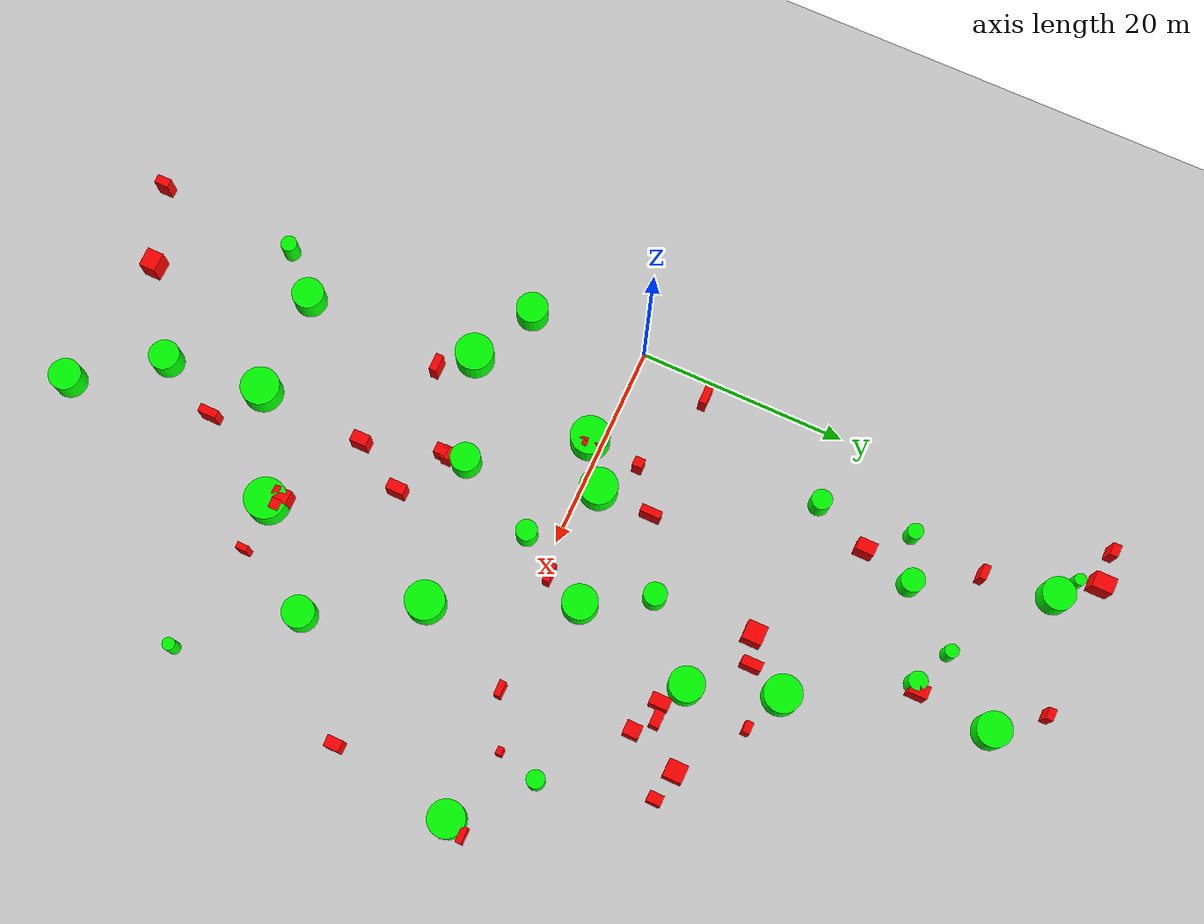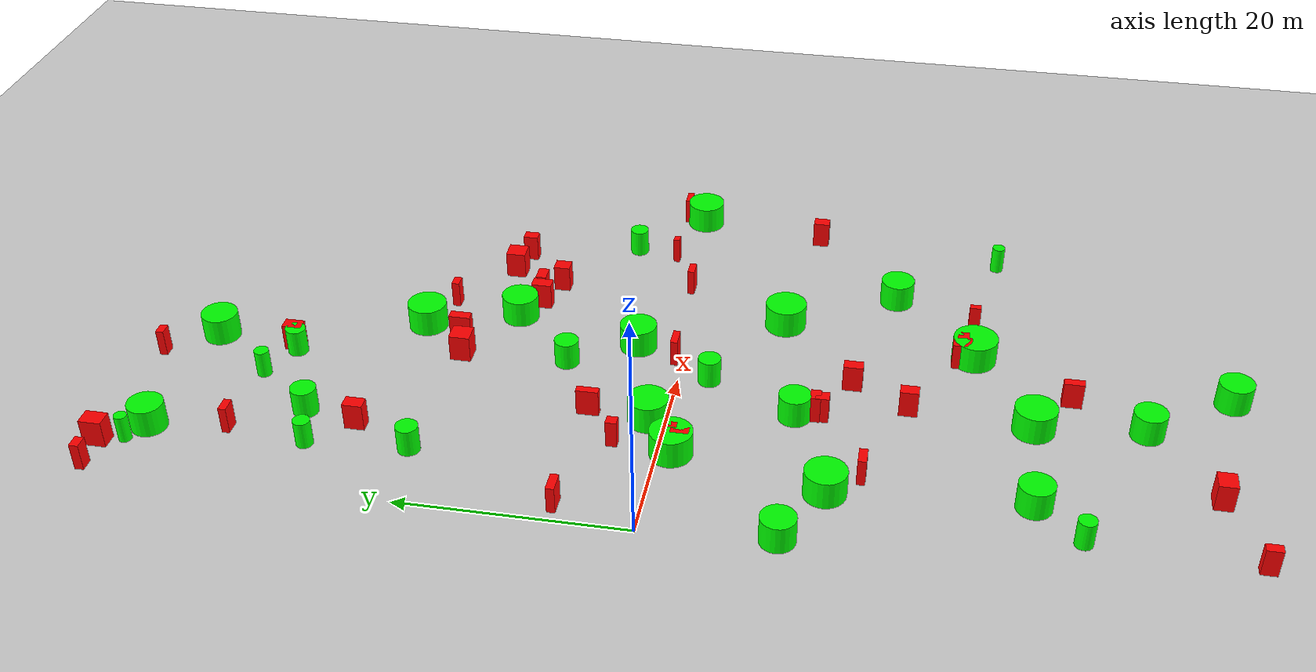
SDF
<sdf version="1.7">
 <world name="default">
  <model name="ground_plane">
   <static>1</static>
   <link name="link">
    <collision name="collision">
     <geometry><plane><normal>0 0 1</normal><size>100 100</size></plane></geometry>
     <surface>
      <contact><collide_bitmask>65535</collide_bitmask></contact>
      <friction><ode><mu>100</mu><mu2>50</mu2></ode></friction>
     </surface>
    </collision>
    <visual name="visual">
     <cast_shadows>0</cast_shadows>
     <geometry><plane><normal>0 0 1</normal><size>100 100</size></plane></geometry>
     <material>
      <script><uri>file://media/materials/scripts/gazebo.material</uri><name>Gazebo/Grey</name></script>
     </material>
    </visual>
   </link>
  </model>
  <model name="cylinder1">
   <static>1</static>
   <link name="link">
    <inertial>
     <mass>1</mass>
     <inertia><ixx>0.5</ixx><ixy>0</ixy><ixz>0</ixz><iyy>0.5</iyy><iyz>0</iyz><izz>1</izz></inertia>
    </inertial>
    <collision name="collision">
     <geometry><cylinder><radius>1.8651</radius><length>2.5</length></cylinder></geometry>
    </collision>
    <visual name="visual">
     <geometry><cylinder><radius>1.8651</radius><length>2.5</length></cylinder></geometry>
     <material>
      <ambient>0 1 0 1</ambient>
      <diffuse>0 1 0 1</diffuse>
      <specular>0.1 0.1 0.1 1</specular>
      <emissive>0 0 0 0</emissive>
     </material>
    </visual>
   </link>
   <pose>30.1802 -8.29921 1.25 0 -0 0</pose>
  </model>
  <model name="cylinder3">
   <static>1</static>
   <link name="link">
    <inertial>
     <mass>1</mass>
     <inertia><ixx>0.5</ixx><ixy>0</ixy><ixz>0</ixz><iyy>0.5</iyy><iyz>0</iyz><izz>1</izz></inertia>
    </inertial>
    <collision name="collision">
     <geometry><cylinder><radius>1.09951</radius><length>2.5</length></cylinder></geometry>
    </collision>
    <visual name="visual">
     <geometry><cylinder><radius>1.09951</radius><length>2.5</length></cylinder></geometry>
     <material>
      <ambient>0 1 0 1</ambient>
      <diffuse>0 1 0 1</diffuse>
      <specular>0.1 0.1 0.1 1</specular>
      <emissive>0 0 0 0</emissive>
     </material>
    </visual>
   </link>
   <pose>21.0441 10.3055 1.25 0 -0 0</pose>
  </model>
  <model name="cylinder6">
   <static>1</static>
   <link name="link">
    <inertial>
     <mass>1</mass>
     <inertia><ixx>0.5</ixx><ixy>0</ixy><ixz>0</ixz><iyy>0.5</iyy><iyz>0</iyz><izz>1</izz></inertia>
    </inertial>
    <collision name="collision">
     <geometry><cylinder><radius>1.86456</radius><length>2.5</length></cylinder></geometry>
    </collision>
    <visual name="visual">
     <geometry><cylinder><radius>1.86456</radius><length>2.5</length></cylinder></geometry>
     <material>
      <ambient>0 1 0 1</ambient>
      <diffuse>0 1 0 1</diffuse>
      <specular>0.1 0.1 0.1 1</specular>
      <emissive>0 0 0 0</emissive>
     </material>
    </visual>
   </link>
   <pose>9.96198 -1.16739 1.25 0 -0 0</pose>
  </model>
  <model name="cylinder7">
   <static>1</static>
   <link name="link">
    <inertial>
     <mass>1</mass>
     <inertia><ixx>0.5</ixx><ixy>0</ixy><ixz>0</ixz><iyy>0.5</iyy><iyz>0</iyz><izz>1</izz></inertia>
    </inertial>
    <collision name="collision">
     <geometry><cylinder><radius>1.57269</radius><length>2.5</length></cylinder></geometry>
    </collision>
    <visual name="visual">
     <geometry><cylinder><radius>1.57269</radius><length>2.5</length></cylinder></geometry>
     <material>
      <ambient>0 1 0 1</ambient>
      <diffuse>0 1 0 1</diffuse>
      <specular>0.1 0.1 0.1 1</specular>
      <emissive>0 0 0 0</emissive>
     </material>
    </visual>
   </link>
   <pose>5.89837 43.3155 1.25 0 -0 0</pose>
  </model>
  <model name="cylinder10">
   <static>1</static>
   <link name="link">
    <inertial>
     <mass>1</mass>
     <inertia><ixx>0.5</ixx><ixy>0</ixy><ixz>0</ixz><iyy>0.5</iyy><iyz>0</iyz><izz>1</izz></inertia>
    </inertial>
    <collision name="collision">
     <geometry><cylinder><radius>0.595167</radius><length>2.5</length></cylinder></geometry>
    </collision>
    <visual name="visual">
     <geometry><cylinder><radius>0.595167</radius><length>2.5</length></cylinder></geometry>
     <material>
      <ambient>0 1 0 1</ambient>
      <diffuse>0 1 0 1</diffuse>
      <specular>0.1 0.1 0.1 1</specular>
      <emissive>0 0 0 0</emissive>
     </material>
    </visual>
   </link>
   <pose>43.251 -27.3612 1.25 0 -0 0</pose>
  </model>
  <model name="cylinder12">
   <static>1</static>
   <link name="link">
    <inertial>
     <mass>1</mass>
     <inertia><ixx>0.5</ixx><ixy>0</ixy><ixz>0</ixz><iyy>0.5</iyy><iyz>0</iyz><izz>1</izz></inertia>
    </inertial>
    <collision name="collision">
     <geometry><cylinder><radius>0.905594</radius><length>2.5</length></cylinder></geometry>
    </collision>
    <visual name="visual">
     <geometry><cylinder><radius>0.905594</radius><length>2.5</length></cylinder></geometry>
     <material>
      <ambient>0 1 0 1</ambient>
      <diffuse>0 1 0 1</diffuse>
      <specular>0.1 0.1 0.1 1</specular>
      <emissive>0 0 0 0</emissive>
     </material>
    </visual>
   </link>
   <pose>18.5045 34.7129 1.25 0 -0 0</pose>
  </model>
  <model name="cylinder13">
   <static>1</static>
   <link name="link">
    <inertial>
     <mass>1</mass>
     <inertia><ixx>0.5</ixx><ixy>0</ixy><ixz>0</ixz><iyy>0.5</iyy><iyz>0</iyz><izz>1</izz></inertia>
    </inertial>
    <collision name="collision">
     <geometry><cylinder><radius>1.41726</radius><length>2.5</length></cylinder></geometry>
    </collision>
    <visual name="visual">
     <geometry><cylinder><radius>1.41726</radius><length>2.5</length></cylinder></geometry>
     <material>
      <ambient>0 1 0 1</ambient>
      <diffuse>0 1 0 1</diffuse>
      <specular>0.1 0.1 0.1 1</specular>
      <emissive>0 0 0 0</emissive>
     </material>
    </visual>
   </link>
   <pose>16.6447 -10.7088 1.25 0 -0 0</pose>
  </model>
  <model name="cylinder17">
   <static>1</static>
   <link name="link">
    <inertial>
     <mass>1</mass>
     <inertia><ixx>0.5</ixx><ixy>0</ixy><ixz>0</ixz><iyy>0.5</iyy><iyz>0</iyz><izz>1</izz></inertia>
    </inertial>
    <collision name="collision">
     <geometry><cylinder><radius>0.568678</radius><length>2.5</length></cylinder></geometry>
    </collision>
    <visual name="visual">
     <geometry><cylinder><radius>0.568678</radius><length>2.5</length></cylinder></geometry>
     <material>
      <ambient>0 1 0 1</ambient>
      <diffuse>0 1 0 1</diffuse>
      <specular>0.1 0.1 0.1 1</specular>
      <emissive>0 0 0 0</emissive>
     </material>
    </visual>
   </link>
   <pose>3.90818 44.5877 1.25 0 -0 0</pose>
  </model>
  <model name="cylinder21">
   <static>1</static>
   <link name="link">
    <inertial>
     <mass>1</mass>
     <inertia><ixx>0.5</ixx><ixy>0</ixy><ixz>0</ixz><iyy>0.5</iyy><iyz>0</iyz><izz>1</izz></inertia>
    </inertial>
    <collision name="collision">
     <geometry><cylinder><radius>1.8193</radius><length>2.5</length></cylinder></geometry>
    </collision>
    <visual name="visual">
     <geometry><cylinder><radius>1.8193</radius><length>2.5</length></cylinder></geometry>
     <material>
      <ambient>0 1 0 1</ambient>
      <diffuse>0 1 0 1</diffuse>
      <specular>0.1 0.1 0.1 1</specular>
      <emissive>0 0 0 0</emissive>
     </material>
    </visual>
   </link>
   <pose>7.11333 -14.3212 1.25 0 -0 0</pose>
  </model>
  <model name="cylinder22">
   <static>1</static>
   <link name="link">
    <inertial>
     <mass>1</mass>
     <inertia><ixx>0.5</ixx><ixy>0</ixy><ixz>0</ixz><iyy>0.5</iyy><iyz>0</iyz><izz>1</izz></inertia>
    </inertial>
    <collision name="collision">
     <geometry><cylinder><radius>1.74425</radius><length>2.5</length></cylinder></geometry>
    </collision>
    <visual name="visual">
     <geometry><cylinder><radius>1.74425</radius><length>2.5</length></cylinder></geometry>
     <material>
      <ambient>0 1 0 1</ambient>
      <diffuse>0 1 0 1</diffuse>
      <specular>0.1 0.1 0.1 1</specular>
      <emissive>0 0 0 0</emissive>
     </material>
    </visual>
   </link>
   <pose>46.8099 1.81907 1.25 0 -0 0</pose>
  </model>
  <model name="cylinder23">
   <static>1</static>
   <link name="link">
    <inertial>
     <mass>1</mass>
     <inertia><ixx>0.5</ixx><ixy>0</ixy><ixz>0</ixz><iyy>0.5</iyy><iyz>0</iyz><izz>1</izz></inertia>
    </inertial>
    <collision name="collision">
     <geometry><cylinder><radius>1.13008</radius><length>2.5</length></cylinder></geometry>
    </collision>
    <visual name="visual">
     <geometry><cylinder><radius>1.13008</radius><length>2.5</length></cylinder></geometry>
     <material>
      <ambient>0 1 0 1</ambient>
      <diffuse>0 1 0 1</diffuse>
      <specular>0.1 0.1 0.1 1</specular>
      <emissive>0 0 0 0</emissive>
     </material>
    </visual>
   </link>
   <pose>10.2275 30.9059 1.25 0 -0 0</pose>
  </model>
  <model name="cylinder25">
   <static>1</static>
   <link name="link">
    <inertial>
     <mass>1</mass>
     <inertia><ixx>0.5</ixx><ixy>0</ixy><ixz>0</ixz><iyy>0.5</iyy><iyz>0</iyz><izz>1</izz></inertia>
    </inertial>
    <collision name="collision">
     <geometry><cylinder><radius>1.50995</radius><length>2.5</length></cylinder></geometry>
    </collision>
    <visual name="visual">
     <geometry><cylinder><radius>1.50995</radius><length>2.5</length></cylinder></geometry>
     <material>
      <ambient>0 1 0 1</ambient>
      <diffuse>0 1 0 1</diffuse>
      <specular>0.1 0.1 0.1 1</specular>
      <emissive>0 0 0 0</emissive>
     </material>
    </visual>
   </link>
   <pose>0.928293 -11.251 1.25 0 -0 0</pose>
  </model>
  <model name="cylinder26">
   <static>1</static>
   <link name="link">
    <inertial>
     <mass>1</mass>
     <inertia><ixx>0.5</ixx><ixy>0</ixy><ixz>0</ixz><iyy>0.5</iyy><iyz>0</iyz><izz>1</izz></inertia>
    </inertial>
    <collision name="collision">
     <geometry><cylinder><radius>0.654385</radius><length>2.5</length></cylinder></geometry>
    </collision>
    <visual name="visual">
     <geometry><cylinder><radius>0.654385</radius><length>2.5</length></cylinder></geometry>
     <material>
      <ambient>0 1 0 1</ambient>
      <diffuse>0 1 0 1</diffuse>
      <specular>0.1 0.1 0.1 1</specular>
      <emissive>0 0 0 0</emissive>
     </material>
    </visual>
   </link>
   <pose>14.7564 36.4573 1.25 0 -0 0</pose>
  </model>
  <model name="cylinder27">
   <static>1</static>
   <link name="link">
    <inertial>
     <mass>1</mass>
     <inertia><ixx>0.5</ixx><ixy>0</ixy><ixz>0</ixz><iyy>0.5</iyy><iyz>0</iyz><izz>1</izz></inertia>
    </inertial>
    <collision name="collision">
     <geometry><cylinder><radius>1.01462</radius><length>2.5</length></cylinder></geometry>
    </collision>
    <visual name="visual">
     <geometry><cylinder><radius>1.01462</radius><length>2.5</length></cylinder></geometry>
     <material>
      <ambient>0 1 0 1</ambient>
      <diffuse>0 1 0 1</diffuse>
      <specular>0.1 0.1 0.1 1</specular>
      <emissive>0 0 0 0</emissive>
     </material>
    </visual>
   </link>
   <pose>20.5325 -2.70864 1.25 0 -0 0</pose>
  </model>
  <model name="cylinder29">
   <static>1</static>
   <link name="link">
    <inertial>
     <mass>1</mass>
     <inertia><ixx>0.5</ixx><ixy>0</ixy><ixz>0</ixz><iyy>0.5</iyy><iyz>0</iyz><izz>1</izz></inertia>
    </inertial>
    <collision name="collision">
     <geometry><cylinder><radius>0.983032</radius><length>2.5</length></cylinder></geometry>
    </collision>
    <visual name="visual">
     <geometry><cylinder><radius>0.983032</radius><length>2.5</length></cylinder></geometry>
     <material>
      <ambient>0 1 0 1</ambient>
      <diffuse>0 1 0 1</diffuse>
      <specular>0.1 0.1 0.1 1</specular>
      <emissive>0 0 0 0</emissive>
     </material>
    </visual>
   </link>
   <pose>6.74331 20.5658 1.25 0 -0 0</pose>
  </model>
  <model name="cylinder33">
   <static>1</static>
   <link name="link">
    <inertial>
     <mass>1</mass>
     <inertia><ixx>0.5</ixx><ixy>0</ixy><ixz>0</ixz><iyy>0.5</iyy><iyz>0</iyz><izz>1</izz></inertia>
    </inertial>
    <collision name="collision">
     <geometry><cylinder><radius>1.46466</radius><length>2.5</length></cylinder></geometry>
    </collision>
    <visual name="visual">
     <geometry><cylinder><radius>1.46466</radius><length>2.5</length></cylinder></geometry>
     <material>
      <ambient>0 1 0 1</ambient>
      <diffuse>0 1 0 1</diffuse>
      <specular>0.1 0.1 0.1 1</specular>
      <emissive>0 0 0 0</emissive>
     </material>
    </visual>
   </link>
   <pose>19.4033 -40.4297 1.25 0 -0 0</pose>
  </model>
  <model name="cylinder34">
   <static>1</static>
   <link name="link">
    <inertial>
     <mass>1</mass>
     <inertia><ixx>0.5</ixx><ixy>0</ixy><ixz>0</ixz><iyy>0.5</iyy><iyz>0</iyz><izz>1</izz></inertia>
    </inertial>
    <collision name="collision">
     <geometry><cylinder><radius>1.66903</radius><length>2.5</length></cylinder></geometry>
    </collision>
    <visual name="visual">
     <geometry><cylinder><radius>1.66903</radius><length>2.5</length></cylinder></geometry>
     <material>
      <ambient>0 1 0 1</ambient>
      <diffuse>0 1 0 1</diffuse>
      <specular>0.1 0.1 0.1 1</specular>
      <emissive>0 0 0 0</emissive>
     </material>
    </visual>
   </link>
   <pose>27.3196 16.1645 1.25 0 -0 0</pose>
  </model>
  <model name="cylinder35">
   <static>1</static>
   <link name="link">
    <inertial>
     <mass>1</mass>
     <inertia><ixx>0.5</ixx><ixy>0</ixy><ixz>0</ixz><iyy>0.5</iyy><iyz>0</iyz><izz>1</izz></inertia>
    </inertial>
    <collision name="collision">
     <geometry><cylinder><radius>1.99395</radius><length>2.5</length></cylinder></geometry>
    </collision>
    <visual name="visual">
     <geometry><cylinder><radius>1.99395</radius><length>2.5</length></cylinder></geometry>
     <material>
      <ambient>0 1 0 1</ambient>
      <diffuse>0 1 0 1</diffuse>
      <specular>0.1 0.1 0.1 1</specular>
      <emissive>0 0 0 0</emissive>
     </material>
    </visual>
   </link>
   <pose>27.7227 -25.6341 1.25 0 -0 0</pose>
  </model>
  <model name="cylinder38">
   <static>1</static>
   <link name="link">
    <inertial>
     <mass>1</mass>
     <inertia><ixx>0.5</ixx><ixy>0</ixy><ixz>0</ixz><iyy>0.5</iyy><iyz>0</iyz><izz>1</izz></inertia>
    </inertial>
    <collision name="collision">
     <geometry><cylinder><radius>0.747737</radius><length>2.5</length></cylinder></geometry>
    </collision>
    <visual name="visual">
     <geometry><cylinder><radius>0.747737</radius><length>2.5</length></cylinder></geometry>
     <material>
      <ambient>0 1 0 1</ambient>
      <diffuse>0 1 0 1</diffuse>
      <specular>0.1 0.1 0.1 1</specular>
      <emissive>0 0 0 0</emissive>
     </material>
    </visual>
   </link>
   <pose>5.94157 29.4359 1.25 0 -0 0</pose>
  </model>
  <model name="cylinder39">
   <static>1</static>
   <link name="link">
    <inertial>
     <mass>1</mass>
     <inertia><ixx>0.5</ixx><ixy>0</ixy><ixz>0</ixz><iyy>0.5</iyy><iyz>0</iyz><izz>1</izz></inertia>
    </inertial>
    <collision name="collision">
     <geometry><cylinder><radius>1.78702</radius><length>2.5</length></cylinder></geometry>
    </collision>
    <visual name="visual">
     <geometry><cylinder><radius>1.78702</radius><length>2.5</length></cylinder></geometry>
     <material>
      <ambient>0 1 0 1</ambient>
      <diffuse>0 1 0 1</diffuse>
      <specular>0.1 0.1 0.1 1</specular>
      <emissive>0 0 0 0</emissive>
     </material>
    </visual>
   </link>
   <pose>24.5307 24.2606 1.25 0 -0 0</pose>
  </model>
  <model name="cylinder41">
   <static>1</static>
   <link name="link">
    <inertial>
     <mass>1</mass>
     <inertia><ixx>0.5</ixx><ixy>0</ixy><ixz>0</ixz><iyy>0.5</iyy><iyz>0</iyz><izz>1</izz></inertia>
    </inertial>
    <collision name="collision">
     <geometry><cylinder><radius>1.65017</radius><length>2.5</length></cylinder></geometry>
    </collision>
    <visual name="visual">
     <geometry><cylinder><radius>1.65017</radius><length>2.5</length></cylinder></geometry>
     <material>
      <ambient>0 1 0 1</ambient>
      <diffuse>0 1 0 1</diffuse>
      <specular>0.1 0.1 0.1 1</specular>
      <emissive>0 0 0 0</emissive>
     </material>
    </visual>
   </link>
   <pose>19.6859 42.4461 1.25 0 -0 0</pose>
  </model>
  <model name="cylinder44">
   <static>1</static>
   <link name="link">
    <inertial>
     <mass>1</mass>
     <inertia><ixx>0.5</ixx><ixy>0</ixy><ixz>0</ixz><iyy>0.5</iyy><iyz>0</iyz><izz>1</izz></inertia>
    </inertial>
    <collision name="collision">
     <geometry><cylinder><radius>1.53328</radius><length>2.5</length></cylinder></geometry>
    </collision>
    <visual name="visual">
     <geometry><cylinder><radius>1.53328</radius><length>2.5</length></cylinder></geometry>
     <material>
      <ambient>0 1 0 1</ambient>
      <diffuse>0 1 0 1</diffuse>
      <specular>0.1 0.1 0.1 1</specular>
      <emissive>0 0 0 0</emissive>
     </material>
    </visual>
   </link>
   <pose>35.838 -18.1699 1.25 0 -0 0</pose>
  </model>
  <model name="cylinder45">
   <static>1</static>
   <link name="link">
    <inertial>
     <mass>1</mass>
     <inertia><ixx>0.5</ixx><ixy>0</ixy><ixz>0</ixz><iyy>0.5</iyy><iyz>0</iyz><izz>1</izz></inertia>
    </inertial>
    <collision name="collision">
     <geometry><cylinder><radius>0.860562</radius><length>2.5</length></cylinder></geometry>
    </collision>
    <visual name="visual">
     <geometry><cylinder><radius>0.860562</radius><length>2.5</length></cylinder></geometry>
     <material>
      <ambient>0 1 0 1</ambient>
      <diffuse>0 1 0 1</diffuse>
      <specular>0.1 0.1 0.1 1</specular>
      <emissive>0 0 0 0</emissive>
     </material>
    </visual>
   </link>
   <pose>40.4796 7.45677 1.25 0 -0 0</pose>
  </model>
  <model name="cylinder51">
   <static>1</static>
   <link name="link">
    <inertial>
     <mass>1</mass>
     <inertia><ixx>0.5</ixx><ixy>0</ixy><ixz>0</ixz><iyy>0.5</iyy><iyz>0</iyz><izz>1</izz></inertia>
    </inertial>
    <collision name="collision">
     <geometry><cylinder><radius>1.79431</radius><length>2.5</length></cylinder></geometry>
    </collision>
    <visual name="visual">
     <geometry><cylinder><radius>1.79431</radius><length>2.5</length></cylinder></geometry>
     <material>
      <ambient>0 1 0 1</ambient>
      <diffuse>0 1 0 1</diffuse>
      <specular>0.1 0.1 0.1 1</specular>
      <emissive>0 0 0 0</emissive>
     </material>
    </visual>
   </link>
   <pose>14.031 1.5401 1.25 0 -0 0</pose>
  </model>
  <model name="cylinder52">
   <static>1</static>
   <link name="link">
    <inertial>
     <mass>1</mass>
     <inertia><ixx>0.5</ixx><ixy>0</ixy><ixz>0</ixz><iyy>0.5</iyy><iyz>0</iyz><izz>1</izz></inertia>
    </inertial>
    <collision name="collision">
     <geometry><cylinder><radius>1.85071</radius><length>2.5</length></cylinder></geometry>
    </collision>
    <visual name="visual">
     <geometry><cylinder><radius>1.85071</radius><length>2.5</length></cylinder></geometry>
     <material>
      <ambient>0 1 0 1</ambient>
      <diffuse>0 1 0 1</diffuse>
      <specular>0.1 0.1 0.1 1</specular>
      <emissive>0 0 0 0</emissive>
     </material>
    </visual>
   </link>
   <pose>18.378 -30.9505 1.25 0 -0 0</pose>
  </model>
  <model name="cylinder53">
   <static>1</static>
   <link name="link">
    <inertial>
     <mass>1</mass>
     <inertia><ixx>0.5</ixx><ixy>0</ixy><ixz>0</ixz><iyy>0.5</iyy><iyz>0</iyz><izz>1</izz></inertia>
    </inertial>
    <collision name="collision">
     <geometry><cylinder><radius>1.54016</radius><length>2.5</length></cylinder></geometry>
    </collision>
    <visual name="visual">
     <geometry><cylinder><radius>1.54016</radius><length>2.5</length></cylinder></geometry>
     <material>
      <ambient>0 1 0 1</ambient>
      <diffuse>0 1 0 1</diffuse>
      <specular>0.1 0.1 0.1 1</specular>
      <emissive>0 0 0 0</emissive>
     </material>
    </visual>
   </link>
   <pose>24.9018 -47.9278 1.25 0 -0 0</pose>
  </model>
  <model name="cylinder55">
   <static>1</static>
   <link name="link">
    <inertial>
     <mass>1</mass>
     <inertia><ixx>0.5</ixx><ixy>0</ixy><ixz>0</ixz><iyy>0.5</iyy><iyz>0</iyz><izz>1</izz></inertia>
    </inertial>
    <collision name="collision">
     <geometry><cylinder><radius>0.782471</radius><length>2.5</length></cylinder></geometry>
    </collision>
    <visual name="visual">
     <geometry><cylinder><radius>0.782471</radius><length>2.5</length></cylinder></geometry>
     <material>
      <ambient>0 1 0 1</ambient>
      <diffuse>0 1 0 1</diffuse>
      <specular>0.1 0.1 0.1 1</specular>
      <emissive>0 0 0 0</emissive>
     </material>
    </visual>
   </link>
   <pose>4.72557 -34.8483 1.25 0 -0 0</pose>
  </model>
  <model name="cylinder56">
   <static>1</static>
   <link name="link">
    <inertial>
     <mass>1</mass>
     <inertia><ixx>0.5</ixx><ixy>0</ixy><ixz>0</ixz><iyy>0.5</iyy><iyz>0</iyz><izz>1</izz></inertia>
    </inertial>
    <collision name="collision">
     <geometry><cylinder><radius>1.53311</radius><length>2.5</length></cylinder></geometry>
    </collision>
    <visual name="visual">
     <geometry><cylinder><radius>1.53311</radius><length>2.5</length></cylinder></geometry>
     <material>
      <ambient>0 1 0 1</ambient>
      <diffuse>0 1 0 1</diffuse>
      <specular>0.1 0.1 0.1 1</specular>
      <emissive>0 0 0 0</emissive>
     </material>
    </visual>
   </link>
   <pose>8.37751 -31.0098 1.25 0 -0 0</pose>
  </model>
  <model name="cylinder57">
   <static>1</static>
   <link name="link">
    <inertial>
     <mass>1</mass>
     <inertia><ixx>0.5</ixx><ixy>0</ixy><ixz>0</ixz><iyy>0.5</iyy><iyz>0</iyz><izz>1</izz></inertia>
    </inertial>
    <collision name="collision">
     <geometry><cylinder><radius>1.67014</radius><length>2.5</length></cylinder></geometry>
    </collision>
    <visual name="visual">
     <geometry><cylinder><radius>1.67014</radius><length>2.5</length></cylinder></geometry>
     <material>
      <ambient>0 1 0 1</ambient>
      <diffuse>0 1 0 1</diffuse>
      <specular>0.1 0.1 0.1 1</specular>
      <emissive>0 0 0 0</emissive>
     </material>
    </visual>
   </link>
   <pose>24.5219 4.44485 1.25 0 -0 0</pose>
  </model>
  <model name="box4">
   <static>1</static>
   <link name="link">
    <inertial>
     <mass>1</mass>
     <inertia><ixx>0.083</ixx><ixy>0</ixy><ixz>0</ixz><iyy>0.083</iyy><iyz>0</iyz><izz>0.083</izz></inertia>
    </inertial>
    <collision name="collision"><geometry><box><size>1.21628 1.75215 2.5</size></box></geometry></collision>
    <visual name="visual">
     <geometry><box><size>1.21628 1.75215 2.5</size></box></geometry>
     <material>
      <ambient>1 0 0 1</ambient>
      <diffuse>1 0 0 1</diffuse>
      <specular>0.1 0.1 0.1 1</specular>
      <emissive>0 0 0 0</emissive>
     </material>
    </visual>
   </link>
   <pose>9.08167 25.9531 1.25 0 -0 0</pose>
  </model>
  <model name="box5">
   <static>1</static>
   <link name="link">
    <inertial>
     <mass>1</mass>
     <inertia><ixx>0.083</ixx><ixy>0</ixy><ixz>0</ixz><iyy>0.083</iyy><iyz>0</iyz><izz>0.083</izz></inertia>
    </inertial>
    <collision name="collision"><geometry><box><size>0.705458 1.97642 2.5</size></box></geometry></collision>
    <visual name="visual">
     <geometry><box><size>0.705458 1.97642 2.5</size></box></geometry>
     <material>
      <ambient>1 0 0 1</ambient>
      <diffuse>1 0 0 1</diffuse>
      <specular>0.1 0.1 0.1 1</specular>
      <emissive>0 0 0 0</emissive>
     </material>
    </visual>
   </link>
   <pose>14.2268 6.85979 1.25 0 -0 0</pose>
  </model>
  <model name="box6">
   <static>1</static>
   <link name="link">
    <inertial>
     <mass>1</mass>
     <inertia><ixx>0.083</ixx><ixy>0</ixy><ixz>0</ixz><iyy>0.083</iyy><iyz>0</iyz><izz>0.083</izz></inertia>
    </inertial>
    <collision name="collision"><geometry><box><size>1.8271 1.87434 2.5</size></box></geometry></collision>
    <visual name="visual">
     <geometry><box><size>1.8271 1.87434 2.5</size></box></geometry>
     <material>
      <ambient>1 0 0 1</ambient>
      <diffuse>1 0 0 1</diffuse>
      <specular>0.1 0.1 0.1 1</specular>
      <emissive>0 0 0 0</emissive>
     </material>
    </visual>
   </link>
   <pose>20.5312 19.8476 1.25 0 -0 0</pose>
  </model>
  <model name="box7">
   <static>1</static>
   <link name="link">
    <inertial>
     <mass>1</mass>
     <inertia><ixx>0.083</ixx><ixy>0</ixy><ixz>0</ixz><iyy>0.083</iyy><iyz>0</iyz><izz>0.083</izz></inertia>
    </inertial>
    <collision name="collision"><geometry><box><size>0.868373 1.57804 2.5</size></box></geometry></collision>
    <visual name="visual">
     <geometry><box><size>0.868373 1.57804 2.5</size></box></geometry>
     <material>
      <ambient>1 0 0 1</ambient>
      <diffuse>1 0 0 1</diffuse>
      <specular>0.1 0.1 0.1 1</specular>
      <emissive>0 0 0 0</emissive>
     </material>
    </visual>
   </link>
   <pose>10.1794 -1.87549 1.25 0 -0 0</pose>
  </model>
  <model name="box8">
   <static>1</static>
   <link name="link">
    <inertial>
     <mass>1</mass>
     <inertia><ixx>0.083</ixx><ixy>0</ixy><ixz>0</ixz><iyy>0.083</iyy><iyz>0</iyz><izz>0.083</izz></inertia>
    </inertial>
    <collision name="collision"><geometry><box><size>0.788576 1.78571 2.5</size></box></geometry></collision>
    <visual name="visual">
     <geometry><box><size>0.788576 1.78571 2.5</size></box></geometry>
     <material>
      <ambient>1 0 0 1</ambient>
      <diffuse>1 0 0 1</diffuse>
      <specular>0.1 0.1 0.1 1</specular>
      <emissive>0 0 0 0</emissive>
     </material>
    </visual>
   </link>
   <pose>22.5336 -34.1751 1.25 0 -0 0</pose>
  </model>
  <model name="box9">
   <static>1</static>
   <link name="link">
    <inertial>
     <mass>1</mass>
     <inertia><ixx>0.083</ixx><ixy>0</ixy><ixz>0</ixz><iyy>0.083</iyy><iyz>0</iyz><izz>0.083</izz></inertia>
    </inertial>
    <collision name="collision"><geometry><box><size>0.743672 0.572607 2.5</size></box></geometry></collision>
    <visual name="visual">
     <geometry><box><size>0.743672 0.572607 2.5</size></box></geometry>
     <material>
      <ambient>1 0 0 1</ambient>
      <diffuse>1 0 0 1</diffuse>
      <specular>0.1 0.1 0.1 1</specular>
      <emissive>0 0 0 0</emissive>
     </material>
    </visual>
   </link>
   <pose>39.5402 3.54251 1.25 0 -0 0</pose>
  </model>
  <model name="box10">
   <static>1</static>
   <link name="link">
    <inertial>
     <mass>1</mass>
     <inertia><ixx>0.083</ixx><ixy>0</ixy><ixz>0</ixz><iyy>0.083</iyy><iyz>0</iyz><izz>0.083</izz></inertia>
    </inertial>
    <collision name="collision"><geometry><box><size>1.19342 1.74651 2.5</size></box></geometry></collision>
    <visual name="visual">
     <geometry><box><size>1.19342 1.74651 2.5</size></box></geometry>
     <material>
      <ambient>1 0 0 1</ambient>
      <diffuse>1 0 0 1</diffuse>
      <specular>0.1 0.1 0.1 1</specular>
      <emissive>0 0 0 0</emissive>
     </material>
    </visual>
   </link>
   <pose>19.164 35.1587 1.25 0 -0 0</pose>
  </model>
  <model name="box12">
   <static>1</static>
   <link name="link">
    <inertial>
     <mass>1</mass>
     <inertia><ixx>0.083</ixx><ixy>0</ixy><ixz>0</ixz><iyy>0.083</iyy><iyz>0</iyz><izz>0.083</izz></inertia>
    </inertial>
    <collision name="collision"><geometry><box><size>1.1126 0.715701 2.5</size></box></geometry></collision>
    <visual name="visual">
     <geometry><box><size>1.1126 0.715701 2.5</size></box></geometry>
     <material>
      <ambient>1 0 0 1</ambient>
      <diffuse>1 0 0 1</diffuse>
      <specular>0.1 0.1 0.1 1</specular>
      <emissive>0 0 0 0</emissive>
     </material>
    </visual>
   </link>
   <pose>28.5599 22.5982 1.25 0 -0 0</pose>
  </model>
  <model name="box13">
   <static>1</static>
   <link name="link">
    <inertial>
     <mass>1</mass>
     <inertia><ixx>0.083</ixx><ixy>0</ixy><ixz>0</ixz><iyy>0.083</iyy><iyz>0</iyz><izz>0.083</izz></inertia>
    </inertial>
    <collision name="collision"><geometry><box><size>1.85001 1.61431 2.5</size></box></geometry></collision>
    <visual name="visual">
     <geometry><box><size>1.85001 1.61431 2.5</size></box></geometry>
     <material>
      <ambient>1 0 0 1</ambient>
      <diffuse>1 0 0 1</diffuse>
      <specular>0.1 0.1 0.1 1</specular>
      <emissive>0 0 0 0</emissive>
     </material>
    </visual>
   </link>
   <pose>11.5396 -45.9371 1.25 0 -0 0</pose>
  </model>
  <model name="box14">
   <static>1</static>
   <link name="link">
    <inertial>
     <mass>1</mass>
     <inertia><ixx>0.083</ixx><ixy>0</ixy><ixz>0</ixz><iyy>0.083</iyy><iyz>0</iyz><izz>0.083</izz></inertia>
    </inertial>
    <collision name="collision"><geometry><box><size>1.10742 1.64433 2.5</size></box></geometry></collision>
    <visual name="visual">
     <geometry><box><size>1.10742 1.64433 2.5</size></box></geometry>
     <material>
      <ambient>1 0 0 1</ambient>
      <diffuse>1 0 0 1</diffuse>
      <specular>0.1 0.1 0.1 1</specular>
      <emissive>0 0 0 0</emissive>
     </material>
    </visual>
   </link>
   <pose>19.0273 -20.2994 1.25 0 -0 0</pose>
  </model>
  <model name="box15">
   <static>1</static>
   <link name="link">
    <inertial>
     <mass>1</mass>
     <inertia><ixx>0.083</ixx><ixy>0</ixy><ixz>0</ixz><iyy>0.083</iyy><iyz>0</iyz><izz>0.083</izz></inertia>
    </inertial>
    <collision name="collision"><geometry><box><size>1.45226 0.622019 2.5</size></box></geometry></collision>
    <visual name="visual">
     <geometry><box><size>1.45226 0.622019 2.5</size></box></geometry>
     <material>
      <ambient>1 0 0 1</ambient>
      <diffuse>1 0 0 1</diffuse>
      <specular>0.1 0.1 0.1 1</specular>
      <emissive>0 0 0 0</emissive>
     </material>
    </visual>
   </link>
   <pose>34.5477 1.21985 1.25 0 -0 0</pose>
  </model>
  <model name="box16">
   <static>1</static>
   <link name="link">
    <inertial>
     <mass>1</mass>
     <inertia><ixx>0.083</ixx><ixy>0</ixy><ixz>0</ixz><iyy>0.083</iyy><iyz>0</iyz><izz>0.083</izz></inertia>
    </inertial>
    <collision name="collision"><geometry><box><size>1.15461 1.85323 2.5</size></box></geometry></collision>
    <visual name="visual">
     <geometry><box><size>1.15461 1.85323 2.5</size></box></geometry>
     <material>
      <ambient>1 0 0 1</ambient>
      <diffuse>1 0 0 1</diffuse>
      <specular>0.1 0.1 0.1 1</specular>
      <emissive>0 0 0 0</emissive>
     </material>
    </visual>
   </link>
   <pose>29.6663 14.6334 1.25 0 -0 0</pose>
  </model>
  <model name="box17">
   <static>1</static>
   <link name="link">
    <inertial>
     <mass>1</mass>
     <inertia><ixx>0.083</ixx><ixy>0</ixy><ixz>0</ixz><iyy>0.083</iyy><iyz>0</iyz><izz>0.083</izz></inertia>
    </inertial>
    <collision name="collision"><geometry><box><size>1.8518 0.72427 2.5</size></box></geometry></collision>
    <visual name="visual">
     <geometry><box><size>1.8518 0.72427 2.5</size></box></geometry>
     <material>
      <ambient>1 0 0 1</ambient>
      <diffuse>1 0 0 1</diffuse>
      <specular>0.1 0.1 0.1 1</specular>
      <emissive>0 0 0 0</emissive>
     </material>
    </visual>
   </link>
   <pose>1.94791 6.97705 1.25 0 -0 0</pose>
  </model>
  <model name="box18">
   <static>1</static>
   <link name="link">
    <inertial>
     <mass>1</mass>
     <inertia><ixx>0.083</ixx><ixy>0</ixy><ixz>0</ixz><iyy>0.083</iyy><iyz>0</iyz><izz>0.083</izz></inertia>
    </inertial>
    <collision name="collision"><geometry><box><size>1.03479 1.21425 2.5</size></box></geometry></collision>
    <visual name="visual">
     <geometry><box><size>1.03479 1.21425 2.5</size></box></geometry>
     <material>
      <ambient>1 0 0 1</ambient>
      <diffuse>1 0 0 1</diffuse>
      <specular>0.1 0.1 0.1 1</specular>
      <emissive>0 0 0 0</emissive>
     </material>
    </visual>
   </link>
   <pose>16.8799 -13.0266 1.25 0 -0 0</pose>
  </model>
  <model name="box19">
   <static>1</static>
   <link name="link">
    <inertial>
     <mass>1</mass>
     <inertia><ixx>0.083</ixx><ixy>0</ixy><ixz>0</ixz><iyy>0.083</iyy><iyz>0</iyz><izz>0.083</izz></inertia>
    </inertial>
    <collision name="collision"><geometry><box><size>1.04152 1.73352 2.5</size></box></geometry></collision>
    <visual name="visual">
     <geometry><box><size>1.04152 1.73352 2.5</size></box></geometry>
     <material>
      <ambient>1 0 0 1</ambient>
      <diffuse>1 0 0 1</diffuse>
      <specular>0.1 0.1 0.1 1</specular>
      <emissive>0 0 0 0</emissive>
     </material>
    </visual>
   </link>
   <pose>21.7812 -15.2461 1.25 0 -0 0</pose>
  </model>
  <model name="box23">
   <static>1</static>
   <link name="link">
    <inertial>
     <mass>1</mass>
     <inertia><ixx>0.083</ixx><ixy>0</ixy><ixz>0</ixz><iyy>0.083</iyy><iyz>0</iyz><izz>0.083</izz></inertia>
    </inertial>
    <collision name="collision"><geometry><box><size>1.0026 1.35809 2.5</size></box></geometry></collision>
    <visual name="visual">
     <geometry><box><size>1.0026 1.35809 2.5</size></box></geometry>
     <material>
      <ambient>1 0 0 1</ambient>
      <diffuse>1 0 0 1</diffuse>
      <specular>0.1 0.1 0.1 1</specular>
      <emissive>0 0 0 0</emissive>
     </material>
    </visual>
   </link>
   <pose>37.6292 17.6682 1.25 0 -0 0</pose>
  </model>
  <model name="box24">
   <static>1</static>
   <link name="link">
    <inertial>
     <mass>1</mass>
     <inertia><ixx>0.083</ixx><ixy>0</ixy><ixz>0</ixz><iyy>0.083</iyy><iyz>0</iyz><izz>0.083</izz></inertia>
    </inertial>
    <collision name="collision"><geometry><box><size>1.18531 0.797784 2.5</size></box></geometry></collision>
    <visual name="visual">
     <geometry><box><size>1.18531 0.797784 2.5</size></box></geometry>
     <material>
      <ambient>1 0 0 1</ambient>
      <diffuse>1 0 0 1</diffuse>
      <specular>0.1 0.1 0.1 1</specular>
      <emissive>0 0 0 0</emissive>
     </material>
    </visual>
   </link>
   <pose>0.034281 46.5548 1.25 0 -0 0</pose>
  </model>
  <model name="box26">
   <static>1</static>
   <link name="link">
    <inertial>
     <mass>1</mass>
     <inertia><ixx>0.083</ixx><ixy>0</ixy><ixz>0</ixz><iyy>0.083</iyy><iyz>0</iyz><izz>0.083</izz></inertia>
    </inertial>
    <collision name="collision"><geometry><box><size>1.12652 0.712664 2.5</size></box></geometry></collision>
    <visual name="visual">
     <geometry><box><size>1.12652 0.712664 2.5</size></box></geometry>
     <material>
      <ambient>1 0 0 1</ambient>
      <diffuse>1 0 0 1</diffuse>
      <specular>0.1 0.1 0.1 1</specular>
      <emissive>0 0 0 0</emissive>
     </material>
    </visual>
   </link>
   <pose>16.3521 46.5171 1.25 0 -0 0</pose>
  </model>
  <model name="box29">
   <static>1</static>
   <link name="link">
    <inertial>
     <mass>1</mass>
     <inertia><ixx>0.083</ixx><ixy>0</ixy><ixz>0</ixz><iyy>0.083</iyy><iyz>0</iyz><izz>0.083</izz></inertia>
    </inertial>
    <collision name="collision"><geometry><box><size>1.29115 1.49383 2.5</size></box></geometry></collision>
    <visual name="visual">
     <geometry><box><size>1.29115 1.49383 2.5</size></box></geometry>
     <material>
      <ambient>1 0 0 1</ambient>
      <diffuse>1 0 0 1</diffuse>
      <specular>0.1 0.1 0.1 1</specular>
      <emissive>0 0 0 0</emissive>
     </material>
    </visual>
   </link>
   <pose>32.9725 13.4208 1.25 0 -0 0</pose>
  </model>
  <model name="box30">
   <static>1</static>
   <link name="link">
    <inertial>
     <mass>1</mass>
     <inertia><ixx>0.083</ixx><ixy>0</ixy><ixz>0</ixz><iyy>0.083</iyy><iyz>0</iyz><izz>0.083</izz></inertia>
    </inertial>
    <collision name="collision"><geometry><box><size>0.850313 1.38384 2.5</size></box></geometry></collision>
    <visual name="visual">
     <geometry><box><size>0.850313 1.38384 2.5</size></box></geometry>
     <material>
      <ambient>1 0 0 1</ambient>
      <diffuse>1 0 0 1</diffuse>
      <specular>0.1 0.1 0.1 1</specular>
      <emissive>0 0 0 0</emissive>
     </material>
    </visual>
   </link>
   <pose>4.00889 -48.6793 1.25 0 -0 0</pose>
  </model>
  <model name="box33">
   <static>1</static>
   <link name="link">
    <inertial>
     <mass>1</mass>
     <inertia><ixx>0.083</ixx><ixy>0</ixy><ixz>0</ixz><iyy>0.083</iyy><iyz>0</iyz><izz>0.083</izz></inertia>
    </inertial>
    <collision name="collision"><geometry><box><size>1.52255 0.961755 2.5</size></box></geometry></collision>
    <visual name="visual">
     <geometry><box><size>1.52255 0.961755 2.5</size></box></geometry>
     <material>
      <ambient>1 0 0 1</ambient>
      <diffuse>1 0 0 1</diffuse>
      <specular>0.1 0.1 0.1 1</specular>
      <emissive>0 0 0 0</emissive>
     </material>
    </visual>
   </link>
   <pose>31.2061 14.9902 1.25 0 -0 0</pose>
  </model>
  <model name="box36">
   <static>1</static>
   <link name="link">
    <inertial>
     <mass>1</mass>
     <inertia><ixx>0.083</ixx><ixy>0</ixy><ixz>0</ixz><iyy>0.083</iyy><iyz>0</iyz><izz>0.083</izz></inertia>
    </inertial>
    <collision name="collision"><geometry><box><size>1.67343 0.734098 2.5</size></box></geometry></collision>
    <visual name="visual">
     <geometry><box><size>1.67343 0.734098 2.5</size></box></geometry>
     <material>
      <ambient>1 0 0 1</ambient>
      <diffuse>1 0 0 1</diffuse>
      <specular>0.1 0.1 0.1 1</specular>
      <emissive>0 0 0 0</emissive>
     </material>
    </visual>
   </link>
   <pose>9.54569 -17.0803 1.25 0 -0 0</pose>
  </model>
  <model name="box40">
   <static>1</static>
   <link name="link">
    <inertial>
     <mass>1</mass>
     <inertia><ixx>0.083</ixx><ixy>0</ixy><ixz>0</ixz><iyy>0.083</iyy><iyz>0</iyz><izz>0.083</izz></inertia>
    </inertial>
    <collision name="collision"><geometry><box><size>1.35319 1.64426 2.5</size></box></geometry></collision>
    <visual name="visual">
     <geometry><box><size>1.35319 1.64426 2.5</size></box></geometry>
     <material>
      <ambient>1 0 0 1</ambient>
      <diffuse>1 0 0 1</diffuse>
      <specular>0.1 0.1 0.1 1</specular>
      <emissive>0 0 0 0</emissive>
     </material>
    </visual>
   </link>
   <pose>26.8595 -24.4977 1.25 0 -0 0</pose>
  </model>
  <model name="box41">
   <static>1</static>
   <link name="link">
    <inertial>
     <mass>1</mass>
     <inertia><ixx>0.083</ixx><ixy>0</ixy><ixz>0</ixz><iyy>0.083</iyy><iyz>0</iyz><izz>0.083</izz></inertia>
    </inertial>
    <collision name="collision"><geometry><box><size>0.938667 0.961594 2.5</size></box></geometry></collision>
    <visual name="visual">
     <geometry><box><size>0.938667 0.961594 2.5</size></box></geometry>
     <material>
      <ambient>1 0 0 1</ambient>
      <diffuse>1 0 0 1</diffuse>
      <specular>0.1 0.1 0.1 1</specular>
      <emissive>0 0 0 0</emissive>
     </material>
    </visual>
   </link>
   <pose>10.491 3.96174 1.25 0 -0 0</pose>
  </model>
  <model name="box42">
   <static>1</static>
   <link name="link">
    <inertial>
     <mass>1</mass>
     <inertia><ixx>0.083</ixx><ixy>0</ixy><ixz>0</ixz><iyy>0.083</iyy><iyz>0</iyz><izz>0.083</izz></inertia>
    </inertial>
    <collision name="collision"><geometry><box><size>1.28503 0.92623 2.5</size></box></geometry></collision>
    <visual name="visual">
     <geometry><box><size>1.28503 0.92623 2.5</size></box></geometry>
     <material>
      <ambient>1 0 0 1</ambient>
      <diffuse>1 0 0 1</diffuse>
      <specular>0.1 0.1 0.1 1</specular>
      <emissive>0 0 0 0</emissive>
     </material>
    </visual>
   </link>
   <pose>16.9426 -12.4507 1.25 0 -0 0</pose>
  </model>
  <model name="box43">
   <static>1</static>
   <link name="link">
    <inertial>
     <mass>1</mass>
     <inertia><ixx>0.083</ixx><ixy>0</ixy><ixz>0</ixz><iyy>0.083</iyy><iyz>0</iyz><izz>0.083</izz></inertia>
    </inertial>
    <collision name="collision"><geometry><box><size>1.41218 0.680469 2.5</size></box></geometry></collision>
    <visual name="visual">
     <geometry><box><size>1.41218 0.680469 2.5</size></box></geometry>
     <material>
      <ambient>1 0 0 1</ambient>
      <diffuse>1 0 0 1</diffuse>
      <specular>0.1 0.1 0.1 1</specular>
      <emissive>0 0 0 0</emissive>
     </material>
    </visual>
   </link>
   <pose>6.83674 36.5459 1.25 0 -0 0</pose>
  </model>
  <model name="box44">
   <static>1</static>
   <link name="link">
    <inertial>
     <mass>1</mass>
     <inertia><ixx>0.083</ixx><ixy>0</ixy><ixz>0</ixz><iyy>0.083</iyy><iyz>0</iyz><izz>0.083</izz></inertia>
    </inertial>
    <collision name="collision"><geometry><box><size>0.699026 1.55808 2.5</size></box></geometry></collision>
    <visual name="visual">
     <geometry><box><size>0.699026 1.55808 2.5</size></box></geometry>
     <material>
      <ambient>1 0 0 1</ambient>
      <diffuse>1 0 0 1</diffuse>
      <specular>0.1 0.1 0.1 1</specular>
      <emissive>0 0 0 0</emissive>
     </material>
    </visual>
   </link>
   <pose>10.7919 -0.754516 1.25 0 -0 0</pose>
  </model>
  <model name="box45">
   <static>1</static>
   <link name="link">
    <inertial>
     <mass>1</mass>
     <inertia><ixx>0.083</ixx><ixy>0</ixy><ixz>0</ixz><iyy>0.083</iyy><iyz>0</iyz><izz>0.083</izz></inertia>
    </inertial>
    <collision name="collision"><geometry><box><size>0.594828 1.02923 2.5</size></box></geometry></collision>
    <visual name="visual">
     <geometry><box><size>0.594828 1.02923 2.5</size></box></geometry>
     <material>
      <ambient>1 0 0 1</ambient>
      <diffuse>1 0 0 1</diffuse>
      <specular>0.1 0.1 0.1 1</specular>
      <emissive>0 0 0 0</emissive>
     </material>
    </visual>
   </link>
   <pose>32.6436 -25.4726 1.25 0 -0 0</pose>
  </model>
  <model name="box46">
   <static>1</static>
   <link name="link">
    <inertial>
     <mass>1</mass>
     <inertia><ixx>0.083</ixx><ixy>0</ixy><ixz>0</ixz><iyy>0.083</iyy><iyz>0</iyz><izz>0.083</izz></inertia>
    </inertial>
    <collision name="collision"><geometry><box><size>0.909483 1.9386 2.5</size></box></geometry></collision>
    <visual name="visual">
     <geometry><box><size>0.909483 1.9386 2.5</size></box></geometry>
     <material>
      <ambient>1 0 0 1</ambient>
      <diffuse>1 0 0 1</diffuse>
      <specular>0.1 0.1 0.1 1</specular>
      <emissive>0 0 0 0</emissive>
     </material>
    </visual>
   </link>
   <pose>23.1728 20.6991 1.25 0 -0 0</pose>
  </model>
  <model name="box47">
   <static>1</static>
   <link name="link">
    <inertial>
     <mass>1</mass>
     <inertia><ixx>0.083</ixx><ixy>0</ixy><ixz>0</ixz><iyy>0.083</iyy><iyz>0</iyz><izz>0.083</izz></inertia>
    </inertial>
    <collision name="collision"><geometry><box><size>1.52427 1.97907 2.5</size></box></geometry></collision>
    <visual name="visual">
     <geometry><box><size>1.52427 1.97907 2.5</size></box></geometry>
     <material>
      <ambient>1 0 0 1</ambient>
      <diffuse>1 0 0 1</diffuse>
      <specular>0.1 0.1 0.1 1</specular>
      <emissive>0 0 0 0</emissive>
     </material>
    </visual>
   </link>
   <pose>3.25544 46.6894 1.25 0 -0 0</pose>
  </model>
  <model name="box54">
   <static>1</static>
   <link name="link">
    <inertial>
     <mass>1</mass>
     <inertia><ixx>0.083</ixx><ixy>0</ixy><ixz>0</ixz><iyy>0.083</iyy><iyz>0</iyz><izz>0.083</izz></inertia>
    </inertial>
    <collision name="collision"><geometry><box><size>1.55485 0.592022 2.5</size></box></geometry></collision>
    <visual name="visual">
     <geometry><box><size>1.55485 0.592022 2.5</size></box></geometry>
     <material>
      <ambient>1 0 0 1</ambient>
      <diffuse>1 0 0 1</diffuse>
      <specular>0.1 0.1 0.1 1</specular>
      <emissive>0 0 0 0</emissive>
     </material>
    </visual>
   </link>
   <pose>47.4926 3.61946 1.25 0 -0 0</pose>
  </model>
  <model name="box55">
   <static>1</static>
   <link name="link">
    <inertial>
     <mass>1</mass>
     <inertia><ixx>0.083</ixx><ixy>0</ixy><ixz>0</ixz><iyy>0.083</iyy><iyz>0</iyz><izz>0.083</izz></inertia>
    </inertial>
    <collision name="collision"><geometry><box><size>1.08872 1.49479 2.5</size></box></geometry></collision>
    <visual name="visual">
     <geometry><box><size>1.08872 1.49479 2.5</size></box></geometry>
     <material>
      <ambient>1 0 0 1</ambient>
      <diffuse>1 0 0 1</diffuse>
      <specular>0.1 0.1 0.1 1</specular>
      <emissive>0 0 0 0</emissive>
     </material>
    </visual>
   </link>
   <pose>45.0491 -10.0509 1.25 0 -0 0</pose>
  </model>
  <model name="box57">
   <static>1</static>
   <link name="link">
    <inertial>
     <mass>1</mass>
     <inertia><ixx>0.083</ixx><ixy>0</ixy><ixz>0</ixz><iyy>0.083</iyy><iyz>0</iyz><izz>0.083</izz></inertia>
    </inertial>
    <collision name="collision"><geometry><box><size>1.81371 0.635397 2.5</size></box></geometry></collision>
    <visual name="visual">
     <geometry><box><size>1.81371 0.635397 2.5</size></box></geometry>
     <material>
      <ambient>1 0 0 1</ambient>
      <diffuse>1 0 0 1</diffuse>
      <specular>0.1 0.1 0.1 1</specular>
      <emissive>0 0 0 0</emissive>
     </material>
    </visual>
   </link>
   <pose>23.1917 0.817276 1.25 0 -0 0</pose>
  </model>
  <model name="box59">
   <static>1</static>
   <link name="link">
    <inertial>
     <mass>1</mass>
     <inertia><ixx>0.083</ixx><ixy>0</ixy><ixz>0</ixz><iyy>0.083</iyy><iyz>0</iyz><izz>0.083</izz></inertia>
    </inertial>
    <collision name="collision"><geometry><box><size>1.00982 0.9877 2.5</size></box></geometry></collision>
    <visual name="visual">
     <geometry><box><size>1.00982 0.9877 2.5</size></box></geometry>
     <material>
      <ambient>1 0 0 1</ambient>
      <diffuse>1 0 0 1</diffuse>
      <specular>0.1 0.1 0.1 1</specular>
      <emissive>0 0 0 0</emissive>
     </material>
    </visual>
   </link>
   <pose>27.8584 -24.5456 1.25 0 -0 0</pose>
  </model>
  <model name="box60">
   <static>1</static>
   <link name="link">
    <inertial>
     <mass>1</mass>
     <inertia><ixx>0.083</ixx><ixy>0</ixy><ixz>0</ixz><iyy>0.083</iyy><iyz>0</iyz><izz>0.083</izz></inertia>
    </inertial>
    <collision name="collision"><geometry><box><size>1.71973 1.8177 2.5</size></box></geometry></collision>
    <visual name="visual">
     <geometry><box><size>1.71973 1.8177 2.5</size></box></geometry>
     <material>
      <ambient>1 0 0 1</ambient>
      <diffuse>1 0 0 1</diffuse>
      <specular>0.1 0.1 0.1 1</specular>
      <emissive>0 0 0 0</emissive>
     </material>
    </visual>
   </link>
   <pose>34.7143 18.3315 1.25 0 -0 0</pose>
  </model>
 </world>
</sdf>
